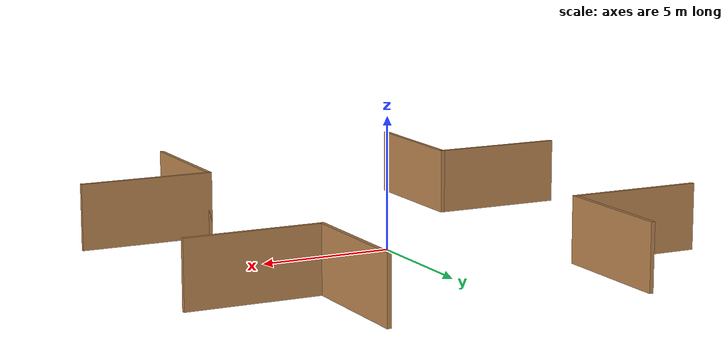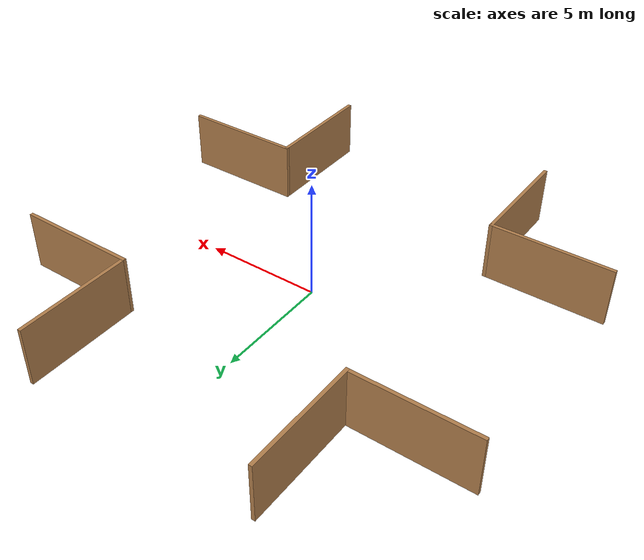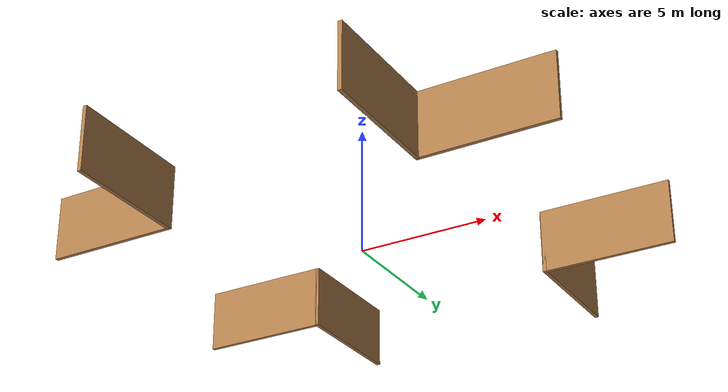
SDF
<?xml version='1.0'?>
<sdf version='1.7'>
  <model name='intersection'>
    <pose>0 0 0 0 -0 0</pose>
    <link name='Wall_0'>
      <collision name='Wall_0_Collision'>
        <geometry>
          <box>
            <size>5.15 0.15 2.5</size>
          </box>
        </geometry>
        <pose>0 0 1.25 0 -0 0</pose>
      </collision>
      <visual name='Wall_0_Visual'>
        <pose>0 0 1.25 0 -0 0</pose>
        <geometry>
          <box>
            <size>5.15 0.15 2.5</size>
          </box>
        </geometry>
        <material>
          <script>
            <uri>file://media/materials/scripts/gazebo.material</uri>
            <name>Gazebo/Wood</name>
          </script>
          <ambient>1 1 1 1</ambient>
        </material>
        <meta>
          <layer>0</layer>
        </meta>
      </visual>
      <pose>-7.5 5 0 0 -0 0</pose>
    </link>
    <link name='Wall_10'>
      <collision name='Wall_10_Collision'>
        <geometry>
          <box>
            <size>5 0.15 2.5</size>
          </box>
        </geometry>
        <pose>0 0 1.25 0 -0 0</pose>
      </collision>
      <visual name='Wall_10_Visual'>
        <pose>0 0 1.25 0 -0 0</pose>
        <geometry>
          <box>
            <size>5 0.15 2.5</size>
          </box>
        </geometry>
        <material>
          <script>
            <uri>file://media/materials/scripts/gazebo.material</uri>
            <name>Gazebo/Wood</name>
          </script>
          <ambient>1 1 1 1</ambient>
        </material>
        <meta>
          <layer>0</layer>
        </meta>
      </visual>
      <pose>-5 7.425 0 0 -0 1.5708</pose>
    </link>
    <link name='Wall_12'>
      <collision name='Wall_12_Collision'>
        <geometry>
          <box>
            <size>5 0.15 2.5</size>
          </box>
        </geometry>
        <pose>0 0 1.25 0 -0 0</pose>
      </collision>
      <visual name='Wall_12_Visual'>
        <pose>0 0 1.25 0 -0 0</pose>
        <geometry>
          <box>
            <size>5 0.15 2.5</size>
          </box>
        </geometry>
        <material>
          <script>
            <uri>file://media/materials/scripts/gazebo.material</uri>
            <name>Gazebo/Wood</name>
          </script>
          <ambient>1 1 1 1</ambient>
        </material>
        <meta>
          <layer>0</layer>
        </meta>
      </visual>
      <pose>5 7.425 0 0 -0 1.5708</pose>
    </link>
    <link name='Wall_14'>
      <collision name='Wall_14_Collision'>
        <geometry>
          <box>
            <size>5 0.15 2.5</size>
          </box>
        </geometry>
        <pose>0 0 1.25 0 -0 0</pose>
      </collision>
      <visual name='Wall_14_Visual'>
        <pose>0 0 1.25 0 -0 0</pose>
        <geometry>
          <box>
            <size>5 0.15 2.5</size>
          </box>
        </geometry>
        <material>
          <script>
            <uri>file://media/materials/scripts/gazebo.material</uri>
            <name>Gazebo/Wood</name>
          </script>
          <ambient>1 1 1 1</ambient>
        </material>
        <meta>
          <layer>0</layer>
        </meta>
      </visual>
      <pose>-5 -7.425 0 0 -0 -1.5708</pose>
    </link>
    <link name='Wall_16'>
      <collision name='Wall_16_Collision'>
        <geometry>
          <box>
            <size>5 0.15 2.5</size>
          </box>
        </geometry>
        <pose>0 0 1.25 0 -0 0</pose>
      </collision>
      <visual name='Wall_16_Visual'>
        <pose>0 0 1.25 0 -0 0</pose>
        <geometry>
          <box>
            <size>5 0.15 2.5</size>
          </box>
        </geometry>
        <material>
          <script>
            <uri>file://media/materials/scripts/gazebo.material</uri>
            <name>Gazebo/Wood</name>
          </script>
          <ambient>1 1 1 1</ambient>
        </material>
        <meta>
          <layer>0</layer>
        </meta>
      </visual>
      <pose>5 -7.425 0 0 -0 -1.5708</pose>
    </link>
    <link name='Wall_3'>
      <collision name='Wall_3_Collision'>
        <geometry>
          <box>
            <size>5.15 0.15 2.5</size>
          </box>
        </geometry>
        <pose>0 0 1.25 0 -0 0</pose>
      </collision>
      <visual name='Wall_3_Visual'>
        <pose>0 0 1.25 0 -0 0</pose>
        <geometry>
          <box>
            <size>5.15 0.15 2.5</size>
          </box>
        </geometry>
        <material>
          <script>
            <uri>file://media/materials/scripts/gazebo.material</uri>
            <name>Gazebo/Wood</name>
          </script>
          <ambient>1 1 1 1</ambient>
        </material>
        <meta>
          <layer>0</layer>
        </meta>
      </visual>
      <pose>7.5 5 0 0 -0 0</pose>
    </link>
    <link name='Wall_6'>
      <collision name='Wall_6_Collision'>
        <geometry>
          <box>
            <size>5.15 0.15 2.5</size>
          </box>
        </geometry>
        <pose>0 0 1.25 0 -0 0</pose>
      </collision>
      <visual name='Wall_6_Visual'>
        <pose>0 0 1.25 0 -0 0</pose>
        <geometry>
          <box>
            <size>5.15 0.15 2.5</size>
          </box>
        </geometry>
        <material>
          <script>
            <uri>file://media/materials/scripts/gazebo.material</uri>
            <name>Gazebo/Wood</name>
          </script>
          <ambient>1 1 1 1</ambient>
        </material>
        <meta>
          <layer>0</layer>
        </meta>
      </visual>
      <pose>-7.5 -5 0 0 -0 3.14159</pose>
    </link>
    <link name='Wall_8'>
      <collision name='Wall_8_Collision'>
        <geometry>
          <box>
            <size>5.15 0.15 2.5</size>
          </box>
        </geometry>
        <pose>0 0 1.25 0 -0 0</pose>
      </collision>
      <visual name='Wall_8_Visual'>
        <pose>0 0 1.25 0 -0 0</pose>
        <geometry>
          <box>
            <size>5.15 0.15 2.5</size>
          </box>
        </geometry>
        <material>
          <script>
            <uri>file://media/materials/scripts/gazebo.material</uri>
            <name>Gazebo/Wood</name>
          </script>
          <ambient>1 1 1 1</ambient>
        </material>
        <meta>
          <layer>0</layer>
        </meta>
      </visual>
      <pose>7.5 -5 0 0 -0 0</pose>
    </link>
    <static>1</static>
  </model>
</sdf>
